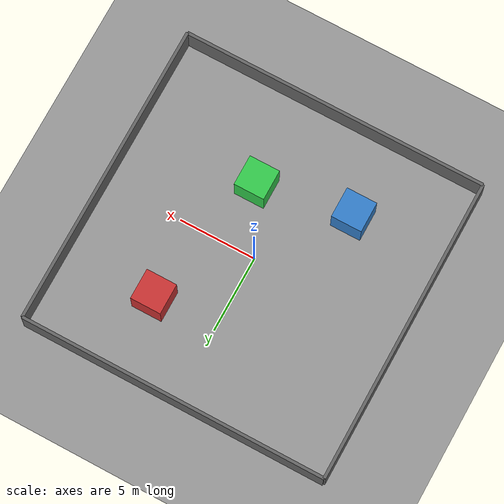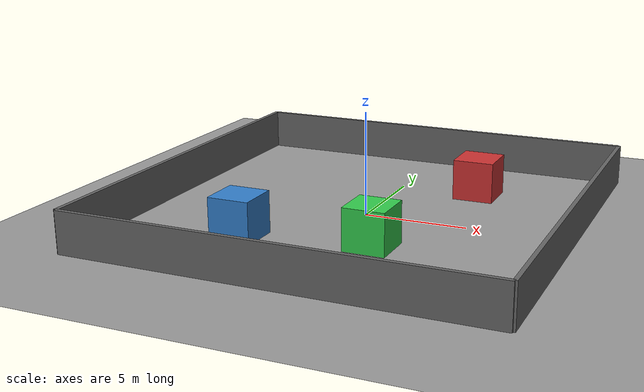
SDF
<sdf version="1.7">
 <world name="crossing_humans">
  <physics name="10ms" type="ode">
   <max_step_size>0.01</max_step_size>
   <real_time_factor>1.0</real_time_factor>
  </physics>
  <plugin filename="libignition-gazebo-physics-system.so" name="ignition::gazebo::systems::Physics"/>
  <plugin filename="libignition-gazebo-scene-broadcaster-system.so" name="ignition::gazebo::systems::SceneBroadcaster"/>
  <plugin filename="libignition-gazebo-user-commands-system.so" name="ignition::gazebo::systems::UserCommands"/>
  <plugin filename="libignition-gazebo-sensors-system.so" name="ignition::gazebo::systems::Sensors">
   <render_engine>ogre2</render_engine>
  </plugin>
  <light name="sun" type="directional">
   <pose>0 0 20 0 0 0</pose>
   <diffuse>0.9 0.9 0.9 1</diffuse>
   <specular>0.3 0.3 0.3 1</specular>
   <attenuation>
    <range>1000</range>
    <constant>0.9</constant>
    <linear>0.01</linear>
    <quadratic>0.001</quadratic>
   </attenuation>
   <direction>-0.5 0.1 -0.9</direction>
  </light>
  <model name="ground_plane">
   <static>true</static>
   <link name="link">
    <collision name="collision">
     <geometry><plane><normal>0 0 1</normal><size>30 30</size></plane></geometry>
    </collision>
    <visual name="visual">
     <geometry><plane><normal>0 0 1</normal><size>30 30</size></plane></geometry>
     <material>
      <ambient>0.6 0.6 0.6 1</ambient>
      <diffuse>0.6 0.6 0.6 1</diffuse>
      <specular>0.1 0.1 0.1 1</specular>
     </material>
    </visual>
   </link>
  </model>
  <model name="wall_north">
   <static>true</static>
   <pose>0 10 1 0 0 0</pose>
   <link name="link">
    <collision name="col"><geometry><box><size>20 0.2 2</size></box></geometry></collision>
    <visual name="vis">
     <geometry><box><size>20 0.2 2</size></box></geometry>
     <material><ambient>0.4 0.4 0.4 1</ambient><diffuse>0.4 0.4 0.4 1</diffuse></material>
    </visual>
   </link>
  </model>
  <model name="wall_south">
   <static>true</static>
   <pose>0 -10 1 0 0 0</pose>
   <link name="link">
    <collision name="col"><geometry><box><size>20 0.2 2</size></box></geometry></collision>
    <visual name="vis">
     <geometry><box><size>20 0.2 2</size></box></geometry>
     <material><ambient>0.4 0.4 0.4 1</ambient><diffuse>0.4 0.4 0.4 1</diffuse></material>
    </visual>
   </link>
  </model>
  <model name="wall_east">
   <static>true</static>
   <pose>10 0 1 0 0 0</pose>
   <link name="link">
    <collision name="col"><geometry><box><size>0.2 20 2</size></box></geometry></collision>
    <visual name="vis">
     <geometry><box><size>0.2 20 2</size></box></geometry>
     <material><ambient>0.4 0.4 0.4 1</ambient><diffuse>0.4 0.4 0.4 1</diffuse></material>
    </visual>
   </link>
  </model>
  <model name="wall_west">
   <static>true</static>
   <pose>-10 0 1 0 0 0</pose>
   <link name="link">
    <collision name="col"><geometry><box><size>0.2 20 2</size></box></geometry></collision>
    <visual name="vis">
     <geometry><box><size>0.2 20 2</size></box></geometry>
     <material><ambient>0.4 0.4 0.4 1</ambient><diffuse>0.4 0.4 0.4 1</diffuse></material>
    </visual>
   </link>
  </model>
  <model name="obstacle_A">
   <static>true</static>
   <pose>4 5 1 0 0 0</pose>
   <link name="link">
    <collision name="col"><geometry><box><size>2 2 2</size></box></geometry></collision>
    <visual name="vis">
     <geometry><box><size>2 2 2</size></box></geometry>
     <material><ambient>0.8 0.2 0.2 1</ambient><diffuse>0.8 0.2 0.2 1</diffuse></material>
    </visual>
   </link>
  </model>
  <model name="obstacle_B">
   <static>true</static>
   <pose>-4 -5 1 0 0 0</pose>
   <link name="link">
    <collision name="col"><geometry><box><size>2 2 2</size></box></geometry></collision>
    <visual name="vis">
     <geometry><box><size>2 2 2</size></box></geometry>
     <material><ambient>0.2 0.5 0.8 1</ambient><diffuse>0.2 0.5 0.8 1</diffuse></material>
    </visual>
   </link>
  </model>
  <model name="obstacle_C">
   <static>true</static>
   <pose>2 -4 1 0 0 0</pose>
   <link name="link">
    <collision name="col"><geometry><box><size>2 2 2</size></box></geometry></collision>
    <visual name="vis">
     <geometry><box><size>2 2 2</size></box></geometry>
     <material><ambient>0.2 0.8 0.3 1</ambient><diffuse>0.2 0.8 0.3 1</diffuse></material>
    </visual>
   </link>
  </model>
 </world>
</sdf>
